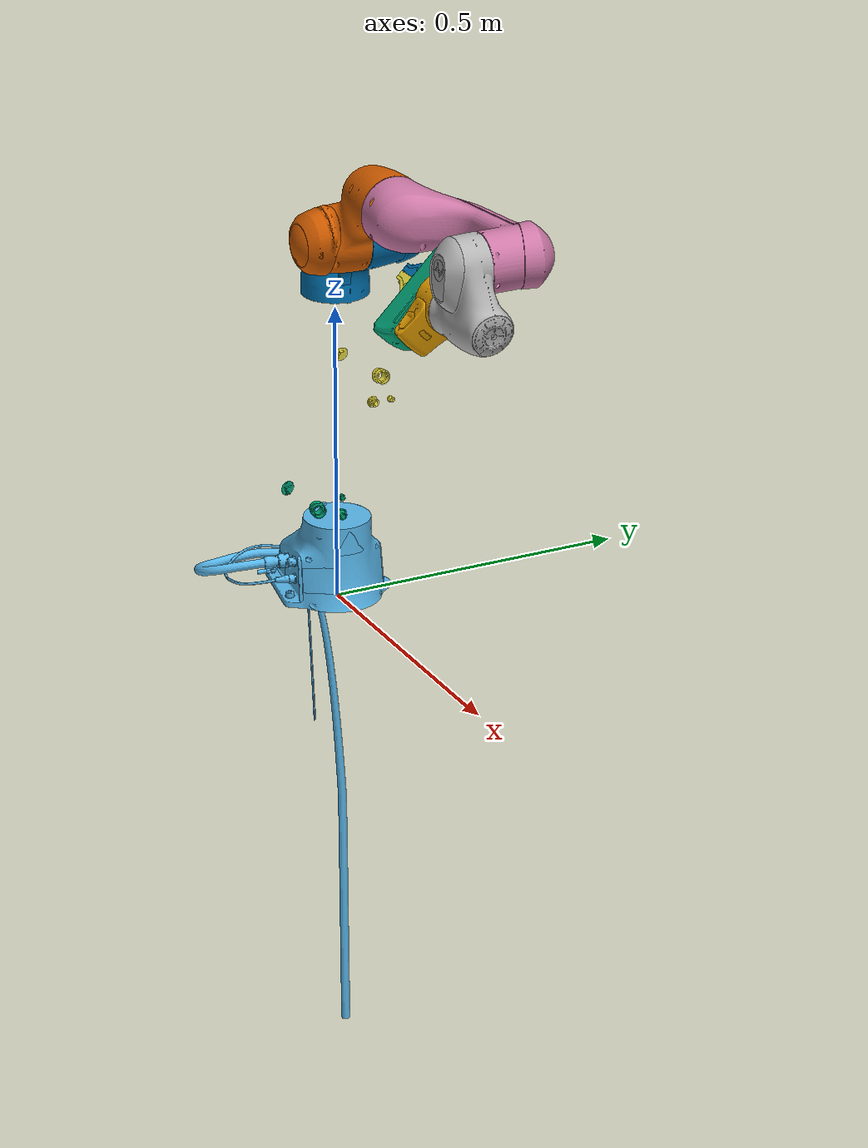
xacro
<?xml version="1.0" encoding="UTF-8"?>
<robot name="panda_w_realsense">
  <joint name="panda_finger_joint1" type="prismatic">
    <origin xyz="0. 0. 0.0584" rpy="0. 0. 0."/>
    <parent link="panda_hand"/>
    <child link="panda_leftfinger"/>
    <axis xyz="0. 1. 0."/>
    <limit lower="0." upper="0.04" effort="0." velocity="0."/>
  </joint>
  <joint name="panda_finger_joint2" type="prismatic">
    <origin xyz="0. 0. 0.0584" rpy="0. 0. 0."/>
    <parent link="panda_hand"/>
    <child link="panda_rightfinger"/>
    <axis xyz="0. -1. 0."/>
    <limit lower="0." upper="0.04" effort="0." velocity="0."/>
  </joint>
  <joint name="panda_hand_joint" type="fixed">
    <origin xyz="0. 0. 0." rpy="0. 0. -0.7853982"/>
    <parent link="panda_link8"/>
    <child link="panda_hand"/>
    <limit lower="0." upper="0." effort="0." velocity="0."/>
  </joint>
  <joint name="panda_joint1" type="revolute">
    <origin xyz="0. -0. 0.3329999" rpy="0. 0. 0."/>
    <parent link="panda_link0"/>
    <child link="panda_link1"/>
    <axis xyz="0. 0. 1."/>
    <limit lower="-2.8973001" upper="2.8973001" effort="0." velocity="0."/>
  </joint>
  <joint name="panda_joint2" type="revolute">
    <origin xyz="-0. -0. -0." rpy="-1.5707966 -0. 0. "/>
    <parent link="panda_link1"/>
    <child link="panda_link2"/>
    <axis xyz="0. 0. 1."/>
    <limit lower="-1.7628" upper="1.7628" effort="0." velocity="0."/>
  </joint>
  <joint name="panda_joint3" type="revolute">
    <origin xyz="0. -0.316 0. " rpy="1.5707964 0. 0. "/>
    <parent link="panda_link2"/>
    <child link="panda_link3"/>
    <axis xyz="0. 0. 1."/>
    <limit lower="-2.8973001" upper="2.8973001" effort="0." velocity="0."/>
  </joint>
  <joint name="panda_joint4" type="revolute">
    <origin xyz="0.0825 0. 0. " rpy="1.5707964 0. 0. "/>
    <parent link="panda_link3"/>
    <child link="panda_link4"/>
    <axis xyz="0. 0. 1."/>
    <limit lower="-3.0718" upper="-0.0698" effort="0." velocity="0."/>
  </joint>
  <joint name="panda_joint5" type="revolute">
    <origin xyz="-0.0824999 0.3839999 0. " rpy="-1.5707964 0. 0. "/>
    <parent link="panda_link4"/>
    <child link="panda_link5"/>
    <axis xyz="0. 0. 1."/>
    <limit lower="-2.8973001" upper="2.8973001" effort="0." velocity="0."/>
  </joint>
  <joint name="panda_joint6" type="revolute">
    <origin xyz="0. 0. 0." rpy="1.5707964 0. 0. "/>
    <parent link="panda_link5"/>
    <child link="panda_link6"/>
    <axis xyz="0. 0. 1."/>
    <limit lower="-0.0175" upper="3.7525" effort="0." velocity="0."/>
  </joint>
  <joint name="panda_joint7" type="revolute">
    <origin xyz="0.088 0.0000002 -0. " rpy="1.5707959 -0. 0. "/>
    <parent link="panda_link6"/>
    <child link="panda_link7"/>
    <axis xyz="0. 0. 1."/>
    <limit lower="-2.8973001" upper="2.8973001" effort="0." velocity="0."/>
  </joint>
  <joint name="panda_joint8" type="fixed">
    <origin xyz="0. 0. 0.107" rpy="0. 0. 0."/>
    <parent link="panda_link7"/>
    <child link="panda_link8"/>
    <limit lower="0." upper="0." effort="0." velocity="0."/>
  </joint>
  <joint name="rootJoint" type="fixed">
    <origin xyz="0. 0. 0." rpy="0. 0. 0."/>
    <parent link="World"/>
    <child link="panda_link0"/>
    <limit lower="0." upper="0." effort="0." velocity="0."/>
  </joint>
  <link name="World"/>
  <link name="panda_link0">
    <inertial>
      <origin xyz="0. 0. 0." rpy="0. 0. 0."/>
      <mass value="2.8142028"/>
      <inertia ixx="0." ixy="0." ixz="0." iyy="0." iyz="0." izz="0."/>
    </inertial>
    <visual>
      <origin xyz="0. 0. 0." rpy="0. 0. -1.5707963"/>
      <geometry>
        <mesh filename="package://panda_w_realsense_description/meshes/geometry_ID3_000.obj" scale="1. 1. 1."/>
      </geometry>
    </visual>
    <visual>
      <origin xyz="0. 0. 0." rpy="0. 0. -1.5707963"/>
      <geometry>
        <mesh filename="package://panda_w_realsense_description/meshes/geometry_ID3_000frA.obj" scale="1. 1. 1."/>
      </geometry>
    </visual>
    <visual>
      <origin xyz="0. 0. 0." rpy="0. 0. -1.5707963"/>
      <geometry>
        <mesh filename="package://panda_w_realsense_description/meshes/geometry_ID3_000jEI.obj" scale="1. 1. 1."/>
      </geometry>
    </visual>
    <visual>
      <origin xyz="0. 0. 0." rpy="0. 0. -1.5707963"/>
      <geometry>
        <mesh filename="package://panda_w_realsense_description/meshes/geometry_ID3_000m4u.obj" scale="1. 1. 1."/>
      </geometry>
    </visual>
    <visual>
      <origin xyz="0. 0. 0." rpy="0. 0. -1.5707963"/>
      <geometry>
        <mesh filename="package://panda_w_realsense_description/meshes/geometry_ID3_000pR3.obj" scale="1. 1. 1."/>
      </geometry>
    </visual>
    <visual>
      <origin xyz="0. -0. 0." rpy="-0. 0. 0."/>
      <geometry>
        <mesh filename="package://panda_w_realsense_description/meshes/logo_decals_polySurface8.obj" scale="0.01 0.01 0.01"/>
      </geometry>
    </visual>
    <visual>
      <origin xyz="0.5336492 0.0001978 0.0007459" rpy="-0. 0. 1.5707964"/>
      <geometry>
        <mesh filename="package://panda_w_realsense_description/meshes/cables_connected_extrudedSurface1.obj" scale="0.01 0.01 0.01"/>
      </geometry>
    </visual>
    <visual>
      <origin xyz="0.5336492 0.0001978 0.0007459" rpy="-0. 0. 1.5707964"/>
      <geometry>
        <mesh filename="package://panda_w_realsense_description/meshes/cables_connected_extrudedSurface2.obj" scale="0.01 0.01 0.01"/>
      </geometry>
    </visual>
    <visual>
      <origin xyz="-0.0682205 -0.0850672 0.0482225" rpy="-0. 0. 2.986038"/>
      <geometry>
        <mesh filename="package://panda_w_realsense_description/meshes/cables_connected_pCylinder1.obj" scale="0.01 0.01 0.01"/>
      </geometry>
    </visual>
    <visual>
      <origin xyz="-0.0259303 -0.0776735 0.0336309" rpy="0. -0. -0.1628491"/>
      <geometry>
        <mesh filename="package://panda_w_realsense_description/meshes/cables_connected_pCylinder2.obj" scale="0.0056822 0.0036471 0.0056822"/>
      </geometry>
    </visual>
    <collision>
      <origin xyz="0. 0. 0." rpy="0. 0. -1.5707963"/>
      <geometry>
        <mesh filename="package://panda_w_realsense_description/meshes/geometry_ID3_000frA.obj" scale="1. 1. 1."/>
      </geometry>
    </collision>
  </link>
  <link name="panda_link1">
    <inertial>
      <origin xyz="0. 0. 0." rpy="0. 0. 0."/>
      <mass value="2.3599997"/>
      <inertia ixx="0." ixy="0." ixz="0." iyy="0." iyz="0." izz="0."/>
    </inertial>
    <visual>
      <origin xyz="0. 0. -0.192" rpy="0. 0. 0."/>
      <geometry>
        <mesh filename="package://panda_w_realsense_description/meshes/geometry_ID3_000.obj" scale="1. 1. 1."/>
      </geometry>
    </visual>
    <collision>
      <origin xyz="0. 0. -0.192" rpy="0. 0. 0."/>
      <geometry>
        <mesh filename="package://panda_w_realsense_description/meshes/geometry_ID3_000.obj" scale="1. 1. 1."/>
      </geometry>
    </collision>
  </link>
  <link name="panda_link2">
    <inertial>
      <origin xyz="0. 0. 0." rpy="0. 0. 0."/>
      <mass value="2.3795187"/>
      <inertia ixx="0." ixy="0." ixz="0." iyy="0." iyz="0." izz="0."/>
    </inertial>
    <visual>
      <origin xyz="0. 0. 0." rpy="0. 0. 0."/>
      <geometry>
        <mesh filename="package://panda_w_realsense_description/meshes/geometry_ID3_000.obj" scale="1. 1. 1."/>
      </geometry>
    </visual>
    <collision>
      <origin xyz="0. 0. 0." rpy="0. 0. 0."/>
      <geometry>
        <mesh filename="package://panda_w_realsense_description/meshes/geometry_ID3_000.obj" scale="1. 1. 1."/>
      </geometry>
    </collision>
  </link>
  <link name="panda_link3">
    <inertial>
      <origin xyz="0. 0. 0." rpy="0. 0. 0."/>
      <mass value="2.6498823"/>
      <inertia ixx="0." ixy="0." ixz="0." iyy="0." iyz="0." izz="0."/>
    </inertial>
    <visual>
      <origin xyz="0. 0. -0.121" rpy="0. 0. 0."/>
      <geometry>
        <mesh filename="package://panda_w_realsense_description/meshes/geometry_ID17_001.obj" scale="1. 1. 1."/>
      </geometry>
    </visual>
    <visual>
      <origin xyz="0. 0. -0.121" rpy="0. 0. 0."/>
      <geometry>
        <mesh filename="package://panda_w_realsense_description/meshes/geometry_ID17_001frA.obj" scale="1. 1. 1."/>
      </geometry>
    </visual>
    <collision>
      <origin xyz="0. 0. -0.121" rpy="0. 0. 0."/>
      <geometry>
        <mesh filename="package://panda_w_realsense_description/meshes/geometry_ID17_001.obj" scale="1. 1. 1."/>
      </geometry>
    </collision>
  </link>
  <link name="panda_link4">
    <inertial>
      <origin xyz="0. 0. 0." rpy="0. 0. 0."/>
      <mass value="2.6948018"/>
      <inertia ixx="0." ixy="0." ixz="0." iyy="0." iyz="0." izz="0."/>
    </inertial>
    <visual>
      <origin xyz="0. 0. 0." rpy="0. 1.5705347 0. "/>
      <geometry>
        <mesh filename="package://panda_w_realsense_description/meshes/geometry_ID25_000.obj" scale="1. 1. 1."/>
      </geometry>
    </visual>
    <visual>
      <origin xyz="0. 0. 0." rpy="0. 1.5707964 0. "/>
      <geometry>
        <mesh filename="package://panda_w_realsense_description/meshes/geometry_ID25_000frA.obj" scale="1. 1. 1."/>
      </geometry>
    </visual>
    <collision>
      <origin xyz="0. 0. 0." rpy="0. 1.5707964 0. "/>
      <geometry>
        <mesh filename="package://panda_w_realsense_description/meshes/geometry_ID25_000frA.obj" scale="1. 1. 1."/>
      </geometry>
    </collision>
  </link>
  <link name="panda_link5">
    <inertial>
      <origin xyz="0. 0. 0." rpy="0. 0. 0."/>
      <mass value="2.9812818"/>
      <inertia ixx="0." ixy="0." ixz="0." iyy="0." iyz="0." izz="0."/>
    </inertial>
    <visual>
      <origin xyz="0. 0. -0.259" rpy="0. 0. 0."/>
      <geometry>
        <mesh filename="package://panda_w_realsense_description/meshes/geometry_ID11_000.obj" scale="1. 1. 1."/>
      </geometry>
    </visual>
    <visual>
      <origin xyz="0. 0. -0.259" rpy="0. 0. 0."/>
      <geometry>
        <mesh filename="package://panda_w_realsense_description/meshes/geometry_ID11_000frA.obj" scale="1. 1. 1."/>
      </geometry>
    </visual>
    <collision>
      <origin xyz="0. 0. -0.259" rpy="0. 0. 0."/>
      <geometry>
        <mesh filename="package://panda_w_realsense_description/meshes/geometry_ID11_000.obj" scale="1. 1. 1."/>
      </geometry>
    </collision>
  </link>
  <link name="panda_link6">
    <inertial>
      <origin xyz="0. 0. 0." rpy="0. 0. 0."/>
      <mass value="1.1285807"/>
      <inertia ixx="0." ixy="0." ixz="0." iyy="0." iyz="0." izz="0."/>
    </inertial>
    <visual>
      <origin xyz="0. 0. -0.015" rpy="0. 0. 0."/>
      <geometry>
        <mesh filename="package://panda_w_realsense_description/meshes/geometry_ID389_001.obj" scale="1. 1. 1."/>
      </geometry>
    </visual>
    <visual>
      <origin xyz="0. 0. -0.015" rpy="0. 0. 0."/>
      <geometry>
        <mesh filename="package://panda_w_realsense_description/meshes/geometry_ID389_001frA.obj" scale="1. 1. 1."/>
      </geometry>
    </visual>
    <visual>
      <origin xyz="0. 0. -0.015" rpy="0. 0. 0."/>
      <geometry>
        <mesh filename="package://panda_w_realsense_description/meshes/geometry_ID389_001jEI.obj" scale="1. 1. 1."/>
      </geometry>
    </visual>
    <visual>
      <origin xyz="0. 0. -0.015" rpy="0. 0. 0."/>
      <geometry>
        <mesh filename="package://panda_w_realsense_description/meshes/geometry_ID389_001m4u.obj" scale="1. 1. 1."/>
      </geometry>
    </visual>
    <visual>
      <origin xyz="0. 0. -0.015" rpy="0. 0. 0."/>
      <geometry>
        <mesh filename="package://panda_w_realsense_description/meshes/geometry_ID389_001pR3.obj" scale="1. 1. 1."/>
      </geometry>
    </visual>
    <visual>
      <origin xyz="0. 0. -0.015" rpy="0. 0. 0."/>
      <geometry>
        <mesh filename="package://panda_w_realsense_description/meshes/geometry_ID389_001snf.obj" scale="1. 1. 1."/>
      </geometry>
    </visual>
    <visual>
      <origin xyz="0. 0. -0.015" rpy="0. 0. 0."/>
      <geometry>
        <mesh filename="package://panda_w_realsense_description/meshes/geometry_ID389_001wdn.obj" scale="1. 1. 1."/>
      </geometry>
    </visual>
    <visual>
      <origin xyz="0. 0. -0.015" rpy="0. 0. 0."/>
      <geometry>
        <mesh filename="package://panda_w_realsense_description/meshes/geometry_ID389_001z0P.obj" scale="1. 1. 1."/>
      </geometry>
    </visual>
    <visual>
      <origin xyz="0. 0. -0.015" rpy="0. 0. 0."/>
      <geometry>
        <mesh filename="package://panda_w_realsense_description/meshes/geometry_ID389_0012M1.obj" scale="1. 1. 1."/>
      </geometry>
    </visual>
    <collision>
      <origin xyz="0. 0. -0.015" rpy="0. 0. 0."/>
      <geometry>
        <mesh filename="package://panda_w_realsense_description/meshes/geometry_ID389_001frA.obj" scale="1. 1. 1."/>
      </geometry>
    </collision>
  </link>
  <link name="panda_link7">
    <inertial>
      <origin xyz="0. 0. 0." rpy="0. 0. 0."/>
      <mass value="0.4052913"/>
      <inertia ixx="0." ixy="0." ixz="0." iyy="0." iyz="0." izz="0."/>
    </inertial>
    <visual>
      <origin xyz="0. 0. 0.052" rpy="0. 0. -0.7853983"/>
      <geometry>
        <mesh filename="package://panda_w_realsense_description/meshes/geometry_ID1683_001.obj" scale="1. 1. 1."/>
      </geometry>
    </visual>
    <visual>
      <origin xyz="0. 0. 0.052" rpy="0. 0. -0.7853983"/>
      <geometry>
        <mesh filename="package://panda_w_realsense_description/meshes/geometry_ID1683_001frA.obj" scale="1. 1. 1."/>
      </geometry>
    </visual>
    <visual>
      <origin xyz="0. 0. 0.052" rpy="0. 0. -0.7853983"/>
      <geometry>
        <mesh filename="package://panda_w_realsense_description/meshes/geometry_ID1683_001jEI.obj" scale="1. 1. 1."/>
      </geometry>
    </visual>
    <collision>
      <origin xyz="0. 0. 0.052" rpy="0. 0. -0.7853983"/>
      <geometry>
        <mesh filename="package://panda_w_realsense_description/meshes/geometry_ID1683_001.obj" scale="1. 1. 1."/>
      </geometry>
    </collision>
    <collision>
      <origin xyz="0. 0. 0.052" rpy="0. 0. -0.7853983"/>
      <geometry>
        <mesh filename="package://panda_w_realsense_description/meshes/geometry_ID1683_001frA.obj" scale="1. 1. 1."/>
      </geometry>
    </collision>
  </link>
  <link name="panda_link8">
    <inertial>
      <origin xyz="0. 0. 0." rpy="0. 0. 0."/>
      <mass value="0.1"/>
      <inertia ixx="0." ixy="0." ixz="0." iyy="0." iyz="0." izz="0."/>
    </inertial>
  </link>
  <link name="panda_hand">
    <inertial>
      <origin xyz="0. 0. 0." rpy="0. 0. 0."/>
      <mass value="0.5583305"/>
      <inertia ixx="0." ixy="0." ixz="0." iyy="0." iyz="0." izz="0."/>
    </inertial>
    <visual>
      <origin xyz="0. 0. 0." rpy="0. 0. 0."/>
      <geometry>
        <mesh filename="package://panda_w_realsense_description/meshes/panda_hand_ID234_001.obj" scale="1. 1. 1."/>
      </geometry>
    </visual>
    <visual>
      <origin xyz="0. 0. 0." rpy="0. 0. 0."/>
      <geometry>
        <mesh filename="package://panda_w_realsense_description/meshes/panda_hand_ID234_001frA.obj" scale="1. 1. 1."/>
      </geometry>
    </visual>
    <visual>
      <origin xyz="0. 0. 0." rpy="0. 0. 0."/>
      <geometry>
        <mesh filename="package://panda_w_realsense_description/meshes/panda_hand_ID234_001jEI.obj" scale="1. 1. 1."/>
      </geometry>
    </visual>
    <visual>
      <origin xyz="0. 0. 0." rpy="0. 0. 0."/>
      <geometry>
        <mesh filename="package://panda_w_realsense_description/meshes/panda_hand_ID234_001m4u.obj" scale="1. 1. 1."/>
      </geometry>
    </visual>
    <visual>
      <origin xyz="0. 0. 0." rpy="0. 0. 0.0000002"/>
      <geometry>
        <mesh filename="package://panda_w_realsense_description/meshes/realsense_ID4_000.obj" scale="1. 1. 1."/>
      </geometry>
    </visual>
    <visual>
      <origin xyz="0. 0. 0." rpy="0. 0. 0.0000002"/>
      <geometry>
        <mesh filename="package://panda_w_realsense_description/meshes/realsense_ID4_000frA.obj" scale="1. 1. 1."/>
      </geometry>
    </visual>
    <visual>
      <origin xyz="0. 0. 0." rpy="0. 0. 0.0000002"/>
      <geometry>
        <mesh filename="package://panda_w_realsense_description/meshes/realsense_ID4_000jEI.obj" scale="1. 1. 1."/>
      </geometry>
    </visual>
    <visual>
      <origin xyz="0. 0. 0." rpy="0. 0. 0.0000002"/>
      <geometry>
        <mesh filename="package://panda_w_realsense_description/meshes/realsense_ID4_000m4u.obj" scale="1. 1. 1."/>
      </geometry>
    </visual>
    <collision>
      <origin xyz="0. 0. 0." rpy="0. 0. 0."/>
      <geometry>
        <mesh filename="package://panda_w_realsense_description/meshes/panda_hand_ID234_001frA.obj" scale="1. 1. 1."/>
      </geometry>
    </collision>
    <collision>
      <origin xyz="0. 0. 0." rpy="0. 0. 0."/>
      <geometry>
        <mesh filename="package://panda_w_realsense_description/meshes/panda_hand_ID234_001m4u.obj" scale="1. 1. 1."/>
      </geometry>
    </collision>
    <collision>
      <origin xyz="0. 0. 0." rpy="0. 0. 0.0000002"/>
      <geometry>
        <mesh filename="package://panda_w_realsense_description/meshes/realsense_ID4_000.obj" scale="1. 1. 1."/>
      </geometry>
    </collision>
    <collision>
      <origin xyz="0. 0. 0." rpy="0. 0. 0.0000002"/>
      <geometry>
        <mesh filename="package://panda_w_realsense_description/meshes/realsense_ID4_000m4u.obj" scale="1. 1. 1."/>
      </geometry>
    </collision>
  </link>
  <link name="panda_leftfinger">
    <inertial>
      <origin xyz="0. 0. 0." rpy="0. 0. 0."/>
      <mass value="0.0140552"/>
      <inertia ixx="0." ixy="0." ixz="0." iyy="0." iyz="0." izz="0."/>
    </inertial>
    <visual>
      <origin xyz="0. 0. 0." rpy="0. 0. 0."/>
      <geometry>
        <mesh filename="package://panda_w_realsense_description/meshes/geometry_ID27.obj" scale="1. 1. 1."/>
      </geometry>
    </visual>
    <visual>
      <origin xyz="0. 0. 0." rpy="0. 0. 0."/>
      <geometry>
        <mesh filename="package://panda_w_realsense_description/meshes/geometry_ID27fa3.obj" scale="1. 1. 1."/>
      </geometry>
    </visual>
    <visual>
      <origin xyz="0. 0. 0." rpy="0. 0. 0."/>
      <geometry>
        <mesh filename="package://panda_w_realsense_description/meshes/geometry_ID27SVM.obj" scale="1. 1. 1."/>
      </geometry>
    </visual>
    <collision>
      <origin xyz="0. 0. 0." rpy="0. 0. 0."/>
      <geometry>
        <mesh filename="package://panda_w_realsense_description/meshes/geometry_ID27.obj" scale="1. 1. 1."/>
      </geometry>
    </collision>
    <collision>
      <origin xyz="0. 0. 0." rpy="0. 0. 0."/>
      <geometry>
        <mesh filename="package://panda_w_realsense_description/meshes/geometry_ID27SVM.obj" scale="1. 1. 1."/>
      </geometry>
    </collision>
  </link>
  <link name="panda_rightfinger">
    <inertial>
      <origin xyz="0. 0. 0." rpy="0. 0. 0."/>
      <mass value="0.0140552"/>
      <inertia ixx="0." ixy="0." ixz="0." iyy="0." iyz="0." izz="0."/>
    </inertial>
    <visual>
      <origin xyz="0. 0. 0." rpy="0. 0. 3.1415927"/>
      <geometry>
        <mesh filename="package://panda_w_realsense_description/meshes/geometry_ID27.obj" scale="1. 1. 1."/>
      </geometry>
    </visual>
    <visual>
      <origin xyz="0. 0. 0." rpy="0. 0. 3.1415927"/>
      <geometry>
        <mesh filename="package://panda_w_realsense_description/meshes/geometry_ID27fa3.obj" scale="1. 1. 1."/>
      </geometry>
    </visual>
    <visual>
      <origin xyz="0. 0. 0." rpy="0. 0. 3.1415927"/>
      <geometry>
        <mesh filename="package://panda_w_realsense_description/meshes/geometry_ID27SVM.obj" scale="1. 1. 1."/>
      </geometry>
    </visual>
    <collision>
      <origin xyz="0. 0. 0." rpy="0. 0. 3.1415927"/>
      <geometry>
        <mesh filename="package://panda_w_realsense_description/meshes/geometry_ID27.obj" scale="1. 1. 1."/>
      </geometry>
    </collision>
    <collision>
      <origin xyz="0. 0. 0." rpy="0. 0. 3.1415927"/>
      <geometry>
        <mesh filename="package://panda_w_realsense_description/meshes/geometry_ID27SVM.obj" scale="1. 1. 1."/>
      </geometry>
    </collision>
  </link>
</robot>
